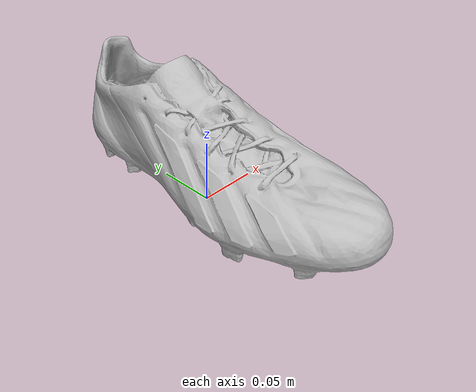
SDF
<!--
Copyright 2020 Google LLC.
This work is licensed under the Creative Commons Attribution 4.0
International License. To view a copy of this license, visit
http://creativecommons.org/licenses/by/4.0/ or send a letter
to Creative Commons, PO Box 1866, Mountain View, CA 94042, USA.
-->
<?xml version="1.0" ?>
<sdf version="1.6">
  <model name="adizero_F50_TRX_FG_LEA">
    <link name="link_0">
      <visual name="visual">
        <geometry>
          <mesh>
            <uri>meshes/model.obj</uri>
          </mesh>
        </geometry>
      </visual>
      <collision name="collision_0">
        <geometry>
          <mesh>
            <uri>meshes/model.obj</uri>
          </mesh>
        </geometry>
      </collision>
    </link>
  </model>
</sdf>
